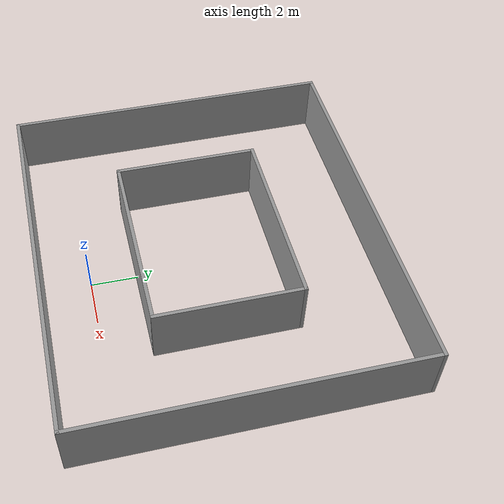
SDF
<?xml version='1.0'?>
<sdf version='1.6'>
  <model name='l_room'>
    <pose frame=''>0 5 0 0 -0 0</pose>
    <link name='Wall_11'>
      <collision name='Wall_11_Collision'>
        <geometry>
          <box>
            <size>16.15 0.15 2.5</size>
          </box>
        </geometry>
        <pose frame=''>0 0 1.25 0 -0 0</pose>
      </collision>
      <visual name='Wall_11_Visual'>
        <pose frame=''>0 0 1.25 0 -0 0</pose>
        <geometry>
          <box>
            <size>16.15 0.15 2.5</size>
          </box>
        </geometry>
        <material>
          <script>
            <uri>file://media/materials/scripts/gazebo.material</uri>
            <name>Gazebo/Grey</name>
          </script>
          <ambient>1 1 1 1</ambient>
        </material>
      </visual>
      <pose frame=''>0 -7 0 0 -0 0</pose>
    </link>
    <link name='Wall_13'>
      <collision name='Wall_13_Collision'>
        <geometry>
          <box>
            <size>14.15 0.15 2.5</size>
          </box>
        </geometry>
        <pose frame=''>0 0 1.25 0 -0 0</pose>
      </collision>
      <visual name='Wall_13_Visual'>
        <pose frame=''>0 0 1.25 0 -0 0</pose>
        <geometry>
          <box>
            <size>14.15 0.15 2.5</size>
          </box>
        </geometry>
        <material>
          <script>
            <uri>file://media/materials/scripts/gazebo.material</uri>
            <name>Gazebo/Grey</name>
          </script>
          <ambient>1 1 1 1</ambient>
        </material>
      </visual>
      <pose frame=''>8 0 0 0 -0 1.5708</pose>
    </link>
    <link name='Wall_15'>
      <collision name='Wall_15_Collision'>
        <geometry>
          <box>
            <size>16.15 0.15 2.5</size>
          </box>
        </geometry>
        <pose frame=''>0 0 1.25 0 -0 0</pose>
      </collision>
      <visual name='Wall_15_Visual'>
        <pose frame=''>0 0 1.25 0 -0 0</pose>
        <geometry>
          <box>
            <size>16.15 0.15 2.5</size>
          </box>
        </geometry>
        <material>
          <script>
            <uri>file://media/materials/scripts/gazebo.material</uri>
            <name>Gazebo/Grey</name>
          </script>
          <ambient>1 1 1 1</ambient>
        </material>
      </visual>
      <pose frame=''>0 7 0 0 -0 3.14159</pose>
    </link>
    <link name='Wall_17'>
      <collision name='Wall_17_Collision'>
        <geometry>
          <box>
            <size>14.15 0.15 2.5</size>
          </box>
        </geometry>
        <pose frame=''>0 0 1.25 0 -0 0</pose>
      </collision>
      <visual name='Wall_17_Visual'>
        <pose frame=''>0 0 1.25 0 -0 0</pose>
        <geometry>
          <box>
            <size>14.15 0.15 2.5</size>
          </box>
        </geometry>
        <material>
          <script>
            <uri>file://media/materials/scripts/gazebo.material</uri>
            <name>Gazebo/Grey</name>
          </script>
          <ambient>1 1 1 1</ambient>
        </material>
      </visual>
      <pose frame=''>-8 0 0 0 0 -1.5708</pose>
    </link>
    <link name='Wall_19'>
      <collision name='Wall_19_Collision'>
        <geometry>
          <box>
            <size>8.15 0.15 2.5</size>
          </box>
        </geometry>
        <pose frame=''>0 0 1.25 0 -0 0</pose>
      </collision>
      <visual name='Wall_19_Visual'>
        <pose frame=''>0 0 1.25 0 -0 0</pose>
        <geometry>
          <box>
            <size>8.15 0.15 2.5</size>
          </box>
        </geometry>
        <material>
          <script>
            <uri>file://media/materials/scripts/gazebo.material</uri>
            <name>Gazebo/Grey</name>
          </script>
          <ambient>1 1 1 1</ambient>
        </material>
      </visual>
      <pose frame=''>0 -3 0 0 -0 0</pose>
    </link>
    <link name='Wall_21'>
      <collision name='Wall_21_Collision'>
        <geometry>
          <box>
            <size>6.15 0.15 2.5</size>
          </box>
        </geometry>
        <pose frame=''>0 0 1.25 0 -0 0</pose>
      </collision>
      <visual name='Wall_21_Visual'>
        <pose frame=''>0 0 1.25 0 -0 0</pose>
        <geometry>
          <box>
            <size>6.15 0.15 2.5</size>
          </box>
        </geometry>
        <material>
          <script>
            <uri>file://media/materials/scripts/gazebo.material</uri>
            <name>Gazebo/Grey</name>
          </script>
          <ambient>1 1 1 1</ambient>
        </material>
      </visual>
      <pose frame=''>4 0 0 0 -0 1.5708</pose>
    </link>
    <link name='Wall_23'>
      <collision name='Wall_23_Collision'>
        <geometry>
          <box>
            <size>8.15 0.15 2.5</size>
          </box>
        </geometry>
        <pose frame=''>0 0 1.25 0 -0 0</pose>
      </collision>
      <visual name='Wall_23_Visual'>
        <pose frame=''>0 0 1.25 0 -0 0</pose>
        <geometry>
          <box>
            <size>8.15 0.15 2.5</size>
          </box>
        </geometry>
        <material>
          <script>
            <uri>file://media/materials/scripts/gazebo.material</uri>
            <name>Gazebo/Grey</name>
          </script>
          <ambient>1 1 1 1</ambient>
        </material>
      </visual>
      <pose frame=''>0 3 0 0 -0 3.14159</pose>
    </link>
    <link name='Wall_25'>
      <collision name='Wall_25_Collision'>
        <geometry>
          <box>
            <size>6.15 0.15 2.5</size>
          </box>
        </geometry>
        <pose frame=''>0 0 1.25 0 -0 0</pose>
      </collision>
      <visual name='Wall_25_Visual'>
        <pose frame=''>0 0 1.25 0 -0 0</pose>
        <geometry>
          <box>
            <size>6.15 0.15 2.5</size>
          </box>
        </geometry>
        <material>
          <script>
            <uri>file://media/materials/scripts/gazebo.material</uri>
            <name>Gazebo/Grey</name>
          </script>
          <ambient>1 1 1 1</ambient>
        </material>
      </visual>
      <pose frame=''>-4 0 0 0 0 -1.5708</pose>
    </link>
    <static>1</static>
  </model>
</sdf>
